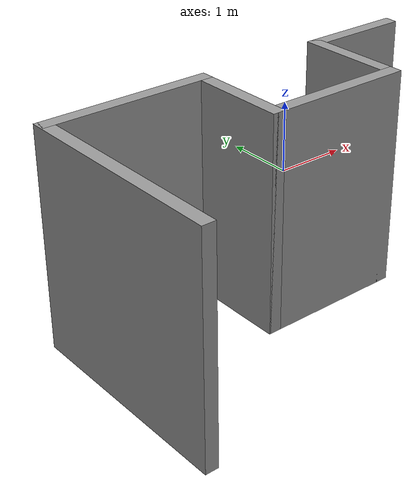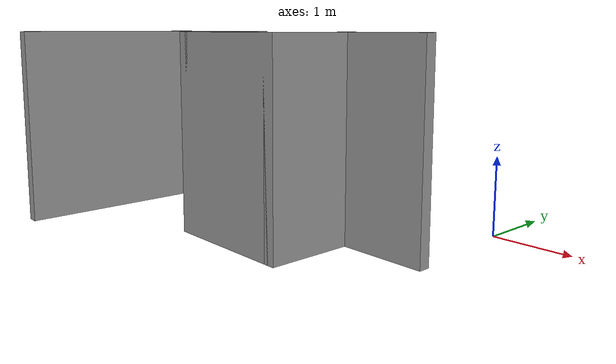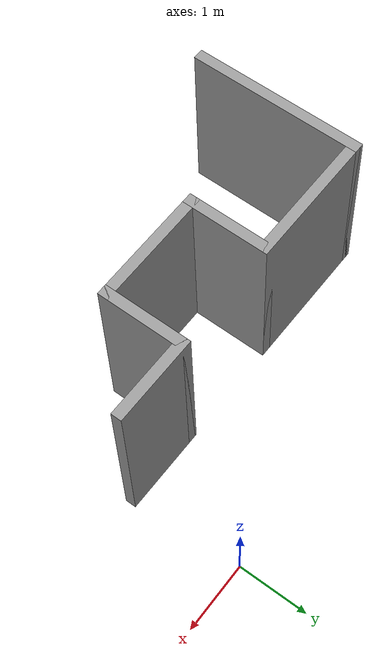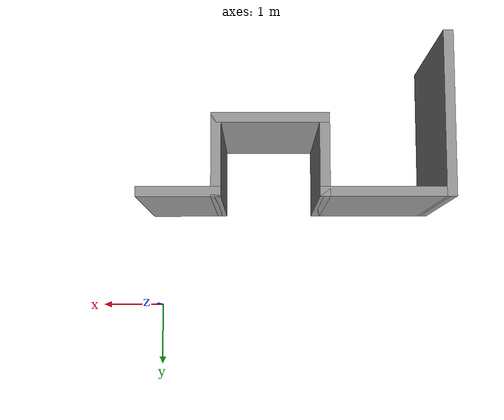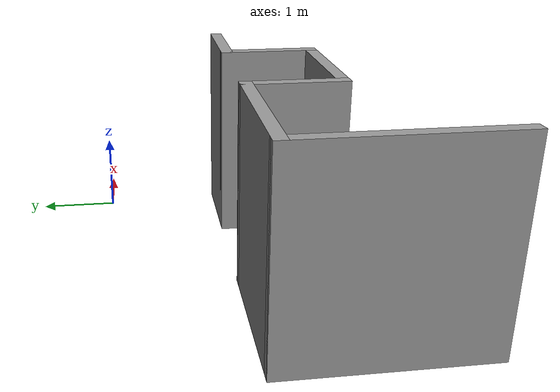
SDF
<?xml version='1.0'?>
<sdf version='1.7'>
  <model name='Maze'>
    <pose>-2.185 -2.0075 0 0 -0 0</pose>
    <link name='Wall_0'>
      <collision name='Wall_0_Collision'>
        <geometry>
          <box>
            <size>2.5 0.15 2.5</size>
          </box>
        </geometry>
        <pose>0 0 1.25 0 -0 0</pose>
      </collision>
      <visual name='Wall_0_Visual'>
        <pose>0 0 1.25 0 -0 0</pose>
        <geometry>
          <box>
            <size>2.5 0.15 2.5</size>
          </box>
        </geometry>
        <material>
          <script>
            <uri>file://media/materials/scripts/gazebo.material</uri>
            <name>Gazebo/Grey</name>
          </script>
          <ambient>1 1 1 1</ambient>
        </material>
        <meta>
          <layer>0</layer>
        </meta>
      </visual>
      <pose>-2.275 -0.7575 0 0 -0 1.5708</pose>
    </link>
    <link name='Wall_1'>
      <collision name='Wall_1_Collision'>
        <geometry>
          <box>
            <size>2 0.15 2.5</size>
          </box>
        </geometry>
        <pose>0 0 1.25 0 -0 0</pose>
      </collision>
      <visual name='Wall_1_Visual'>
        <pose>0 0 1.25 0 -0 0</pose>
        <geometry>
          <box>
            <size>2 0.15 2.5</size>
          </box>
        </geometry>
        <material>
          <script>
            <uri>file://media/materials/scripts/gazebo.material</uri>
            <name>Gazebo/Grey</name>
          </script>
          <ambient>1 1 1 1</ambient>
        </material>
        <meta>
          <layer>0</layer>
        </meta>
      </visual>
      <pose>-1.35 0.4175 0 0 -0 0</pose>
    </link>
    <link name='Wall_2'>
      <collision name='Wall_2_Collision'>
        <geometry>
          <box>
            <size>1.25 0.15 2.5</size>
          </box>
        </geometry>
        <pose>0 0 1.25 0 -0 0</pose>
      </collision>
      <visual name='Wall_2_Visual'>
        <pose>0 0 1.25 0 -0 0</pose>
        <geometry>
          <box>
            <size>1.25 0.15 2.5</size>
          </box>
        </geometry>
        <material>
          <script>
            <uri>file://media/materials/scripts/gazebo.material</uri>
            <name>Gazebo/Grey</name>
          </script>
          <ambient>1 1 1 1</ambient>
        </material>
        <meta>
          <layer>0</layer>
        </meta>
      </visual>
      <pose>-0.425 -0.1325 0 0 -0 -1.5708</pose>
    </link>
    <link name='Wall_3'>
      <collision name='Wall_3_Collision'>
        <geometry>
          <box>
            <size>1.75 0.15 2.5</size>
          </box>
        </geometry>
        <pose>0 0 1.25 0 -0 0</pose>
      </collision>
      <visual name='Wall_3_Visual'>
        <pose>0 0 1.25 0 -0 0</pose>
        <geometry>
          <box>
            <size>1.75 0.15 2.5</size>
          </box>
        </geometry>
        <material>
          <script>
            <uri>file://media/materials/scripts/gazebo.material</uri>
            <name>Gazebo/Grey</name>
          </script>
          <ambient>1 1 1 1</ambient>
        </material>
        <meta>
          <layer>0</layer>
        </meta>
      </visual>
      <pose>0.375 -0.6825 0 0 -0 0</pose>
    </link>
    <link name='Wall_4'>
      <collision name='Wall_4_Collision'>
        <geometry>
          <box>
            <size>1.25 0.15 2.5</size>
          </box>
        </geometry>
        <pose>0 0 1.25 0 -0 0</pose>
      </collision>
      <visual name='Wall_4_Visual'>
        <pose>0 0 1.25 0 -0 0</pose>
        <geometry>
          <box>
            <size>1.25 0.15 2.5</size>
          </box>
        </geometry>
        <material>
          <script>
            <uri>file://media/materials/scripts/gazebo.material</uri>
            <name>Gazebo/Grey</name>
          </script>
          <ambient>1 1 1 1</ambient>
        </material>
        <meta>
          <layer>0</layer>
        </meta>
      </visual>
      <pose>1.175 -0.1325 0 0 -0 1.5708</pose>
    </link>
    <link name='Wall_5'>
      <collision name='Wall_5_Collision'>
        <geometry>
          <box>
            <size>1.25 0.15 2.5</size>
          </box>
        </geometry>
        <pose>0 0 1.25 0 -0 0</pose>
      </collision>
      <visual name='Wall_5_Visual'>
        <pose>0 0 1.25 0 -0 0</pose>
        <geometry>
          <box>
            <size>1.25 0.15 2.5</size>
          </box>
        </geometry>
        <material>
          <script>
            <uri>file://media/materials/scripts/gazebo.material</uri>
            <name>Gazebo/Grey</name>
          </script>
          <ambient>1 1 1 1</ambient>
        </material>
        <meta>
          <layer>0</layer>
        </meta>
      </visual>
      <pose>1.725 0.4175 0 0 -0 0</pose>
    </link>
    <static>1</static>
  </model>
</sdf>
